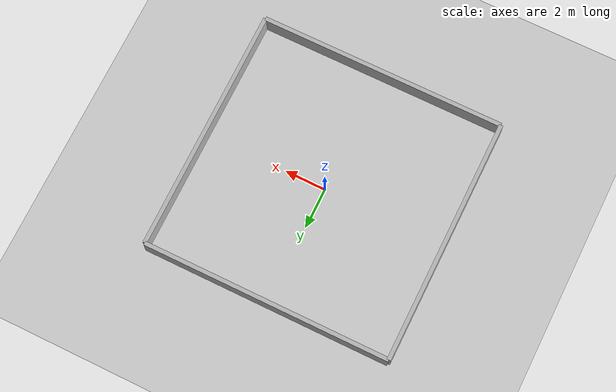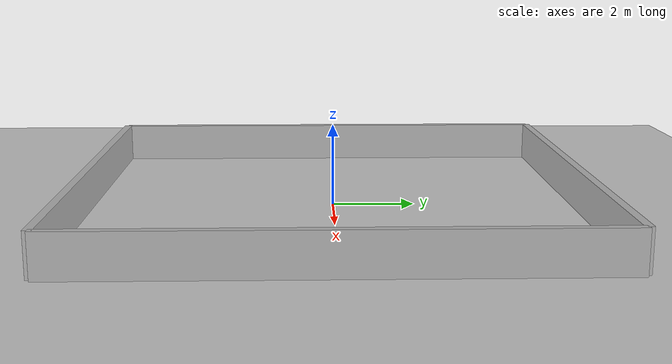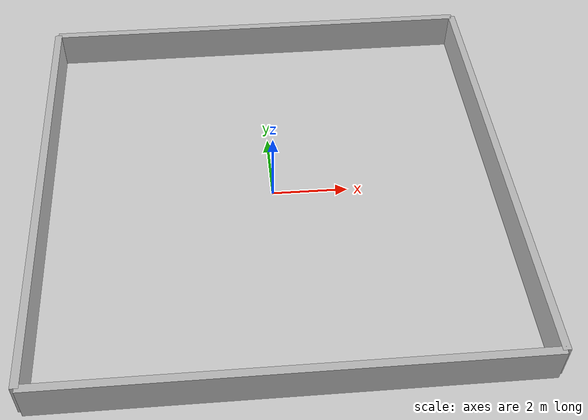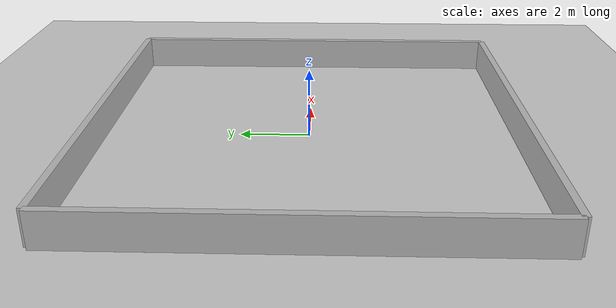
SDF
<sdf version="1.6">
 <world name="follower_world">
  <physics name="default_physics" type="ode">
   <max_step_size>0.001</max_step_size>
   <real_time_factor>1.0</real_time_factor>
   <real_time_update_rate>1000</real_time_update_rate>
  </physics>
  <light name="sun" type="directional">
   <pose>0 0 10 0 -0.4 0.6</pose>
   <diffuse>0.9 0.9 0.85 1</diffuse>
   <specular>0.2 0.2 0.2 1</specular>
   <direction>-0.5 0.3 -0.9</direction>
  </light>
  <light name="fill_light" type="directional">
   <cast_shadows>false</cast_shadows>
   <pose>0 0 8 0 0 0</pose>
   <diffuse>0.4 0.45 0.5 1</diffuse>
   <direction>0.5 -0.3 -0.7</direction>
  </light>
  <scene>
   <ambient>0.35 0.35 0.35 1</ambient>
   <background>0.6 0.7 0.9 1</background>
   <shadows>true</shadows>
  </scene>
  <model name="ground_plane">
   <static>true</static>
   <link name="link">
    <collision name="collision">
     <geometry><plane><normal>0 0 1</normal><size>20 20</size></plane></geometry>
    </collision>
    <visual name="visual"><geometry><plane><normal>0 0 1</normal><size>20 20</size></plane></geometry></visual>
   </link>
  </model>
  <model name="wall_north">
   <static>true</static>
   <pose>0 6 0.5 0 0 0</pose>
   <link name="link">
    <collision name="col"><geometry><box><size>12 0.2 1.0</size></box></geometry></collision>
    <visual name="vis"><geometry><box><size>12 0.2 1.0</size></box></geometry></visual>
   </link>
  </model>
  <model name="wall_south">
   <static>true</static>
   <pose>0 -6 0.5 0 0 0</pose>
   <link name="link">
    <collision name="col"><geometry><box><size>12 0.2 1.0</size></box></geometry></collision>
    <visual name="vis"><geometry><box><size>12 0.2 1.0</size></box></geometry></visual>
   </link>
  </model>
  <model name="wall_east">
   <static>true</static>
   <pose>6 0 0.5 0 0 1.5708</pose>
   <link name="link">
    <collision name="col"><geometry><box><size>12 0.2 1.0</size></box></geometry></collision>
    <visual name="vis"><geometry><box><size>12 0.2 1.0</size></box></geometry></visual>
   </link>
  </model>
  <model name="wall_west">
   <static>true</static>
   <pose>-6 0 0.5 0 0 1.5708</pose>
   <link name="link">
    <collision name="col"><geometry><box><size>12 0.2 1.0</size></box></geometry></collision>
    <visual name="vis"><geometry><box><size>12 0.2 1.0</size></box></geometry></visual>
   </link>
  </model>
 </world>
</sdf>
